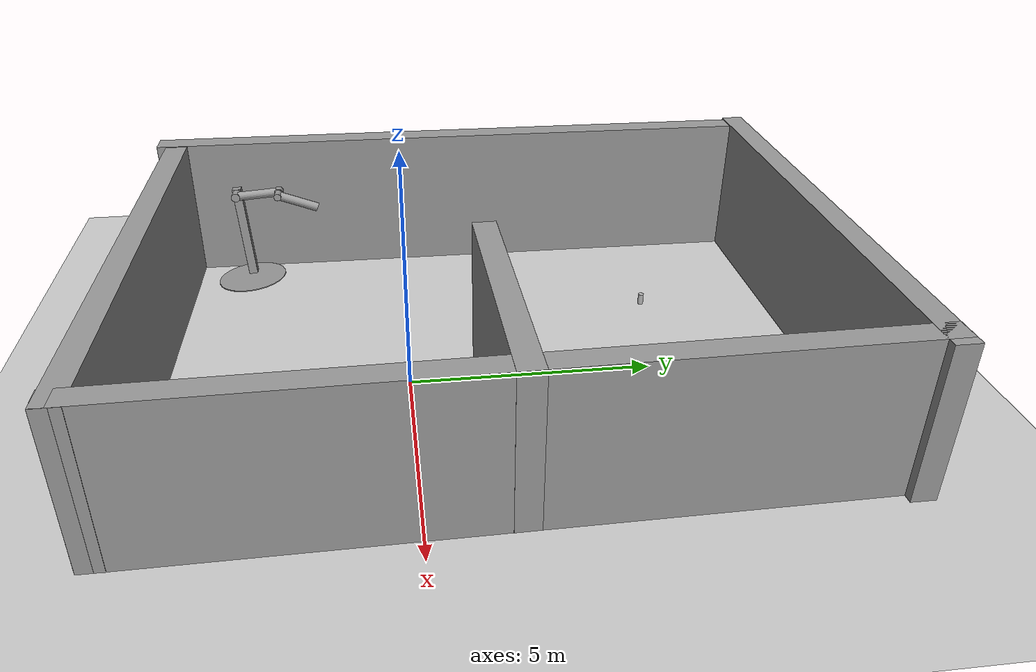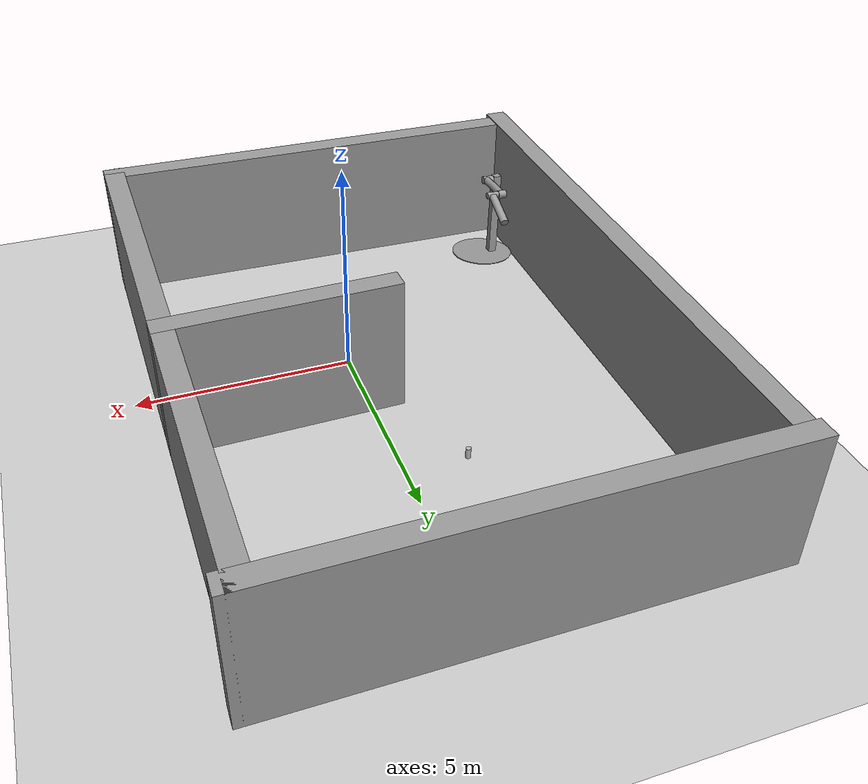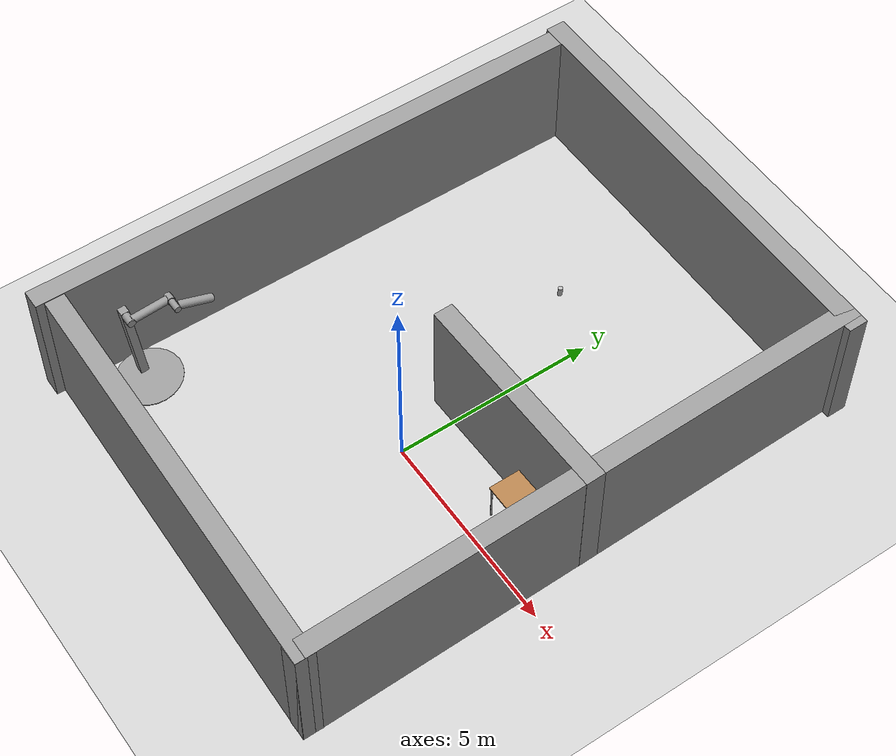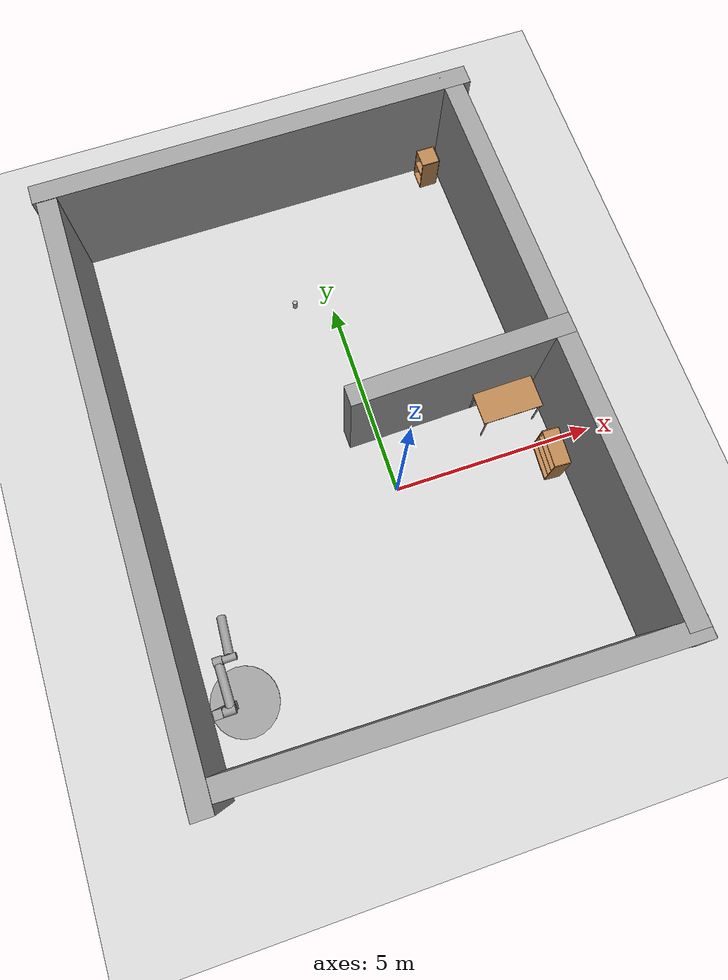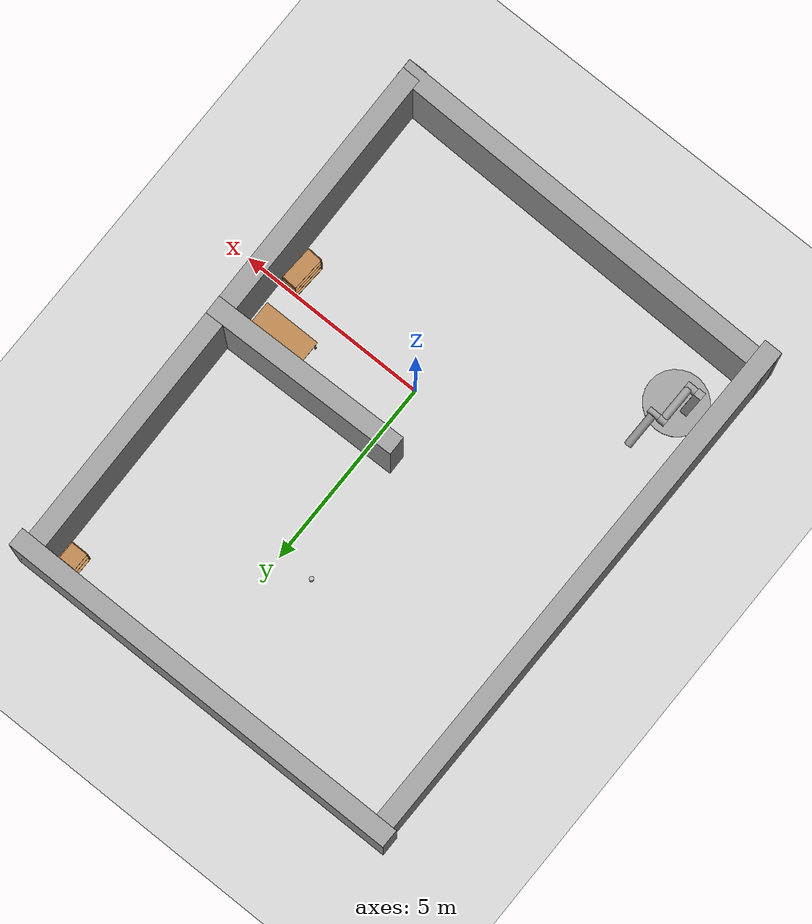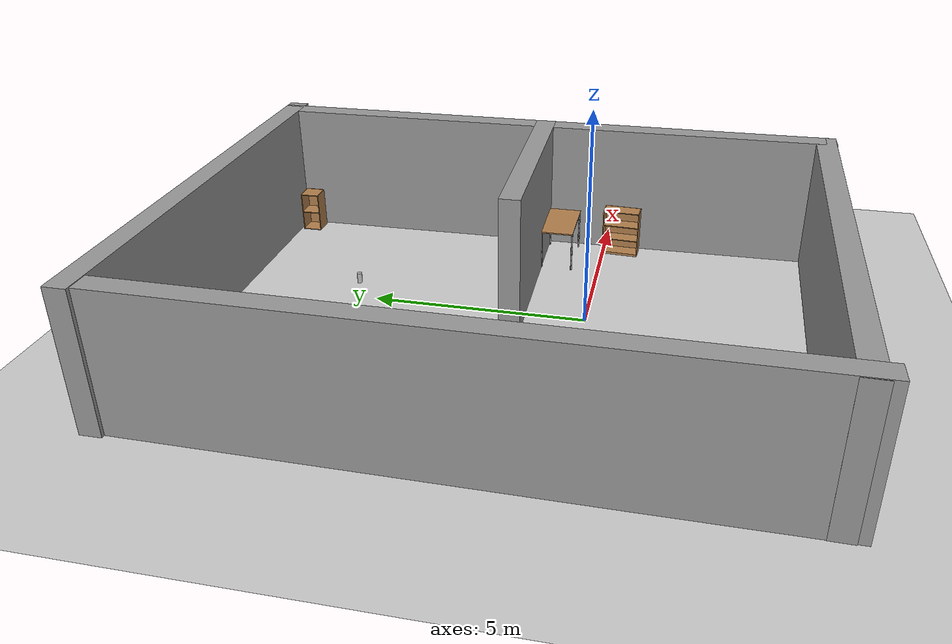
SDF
<sdf version="1.6">
 <world name="default">
  <model name="ground_plane">
   <static>1</static>
   <link name="link">
    <collision name="collision">
     <geometry><plane><normal>0 0 1</normal><size>100 100</size></plane></geometry>
     <surface>
      <contact><collide_bitmask>65535</collide_bitmask></contact>
      <friction><ode><mu>100</mu><mu2>50</mu2></ode></friction>
     </surface>
    </collision>
    <visual name="visual">
     <cast_shadows>0</cast_shadows>
     <geometry><plane><normal>0 0 1</normal><size>100 100</size></plane></geometry>
     <material>
      <script><uri>file://media/materials/scripts/gazebo.material</uri><name>Gazebo/Grey</name></script>
     </material>
    </visual>
   </link>
  </model>
  <model name="ROOM">
   <link name="link">
    <pose>0.44222 -0.722337 1.0886 0 -0 0</pose>
    <inertial>
     <mass>8.22128</mass>
     <inertia><ixx>7.21598</ixx><ixy>0</ixy><ixz>0</ixz><iyy>26.1423</iyy><iyz>0</iyz><izz>19.2492</izz></inertia>
    </inertial>
    <visual name="visual">
     <geometry><box><size>5.27835 0.485431 3.20889</size></box></geometry>
     <material>
      <script><name>Gazebo/Grey</name><uri>file://media/materials/scripts/gazebo.material</uri></script>
      <shader type="pixel"/>
      <ambient>0.3 0.3 0.3 1</ambient>
      <diffuse>0.7 0.7 0.7 1</diffuse>
      <specular>0.01 0.01 0.01 1</specular>
      <emissive>0 0 0 1</emissive>
     </material>
    </visual>
    <collision name="collision">
     <geometry><box><size>5.27835 0.485431 3.20889</size></box></geometry>
     <surface>
      <friction>
       <ode><mu>1</mu><mu2>1</mu2><fdir1>0 0 0</fdir1><slip1>0</slip1><slip2>0</slip2></ode>
       <torsional>
        <coefficient>1</coefficient>
        <patch_radius>0</patch_radius>
        <surface_radius>0</surface_radius>
        <use_patch_radius>1</use_patch_radius>
        <ode><slip>0</slip></ode>
       </torsional>
      </friction>
      <bounce><restitution_coefficient>0</restitution_coefficient><threshold>1e+06</threshold></bounce>
      <contact>
       <collide_without_contact>0</collide_without_contact>
       <collide_without_contact_bitmask>1</collide_without_contact_bitmask>
       <collide_bitmask>1</collide_bitmask>
       <ode>
        <soft_cfm>0</soft_cfm>
        <soft_erp>0.2</soft_erp>
        <kp>1e+13</kp>
        <kd>1</kd>
        <max_vel>0.01</max_vel>
        <min_depth>0</min_depth>
       </ode>
       <bullet>
        <split_impulse>1</split_impulse>
        <split_impulse_penetration_threshold>-0.01</split_impulse_penetration_threshold>
        <soft_cfm>0</soft_cfm>
        <soft_erp>0.2</soft_erp>
        <kp>1e+13</kp>
        <kd>1</kd>
       </bullet>
      </contact>
     </surface>
    </collision>
   </link>
   <link name="link_clone">
    <pose>2.83587 -0.76853 1.0879 3.1e-05 0.00238 1.56466</pose>
    <inertial>
     <mass>22.3167</mass>
     <inertia><ixx>19.5878</ixx><ixy>0</ixy><ixz>0</ixz><iyy>400.93</iyy><iyz>0</iyz><izz>382.218</izz></inertia>
    </inertial>
    <visual name="visual">
     <geometry><box><size>14.3279 0.485431 3.20889</size></box></geometry>
     <material>
      <script><name>Gazebo/Grey</name><uri>file://media/materials/scripts/gazebo.material</uri></script>
      <shader type="pixel"/>
      <ambient>0.3 0.3 0.3 1</ambient>
      <diffuse>0.7 0.7 0.7 1</diffuse>
      <specular>0.01 0.01 0.01 1</specular>
      <emissive>0 0 0 1</emissive>
     </material>
    </visual>
    <collision name="collision">
     <geometry><box><size>14.3279 0.485431 3.20889</size></box></geometry>
     <surface>
      <friction>
       <ode><mu>1</mu><mu2>1</mu2><fdir1>0 0 0</fdir1><slip1>0</slip1><slip2>0</slip2></ode>
       <torsional>
        <coefficient>1</coefficient>
        <patch_radius>0</patch_radius>
        <surface_radius>0</surface_radius>
        <use_patch_radius>1</use_patch_radius>
        <ode><slip>0</slip></ode>
       </torsional>
      </friction>
      <bounce><restitution_coefficient>0</restitution_coefficient><threshold>1e+06</threshold></bounce>
      <contact>
       <collide_without_contact>0</collide_without_contact>
       <collide_without_contact_bitmask>1</collide_without_contact_bitmask>
       <collide_bitmask>1</collide_bitmask>
       <ode>
        <soft_cfm>0</soft_cfm>
        <soft_erp>0.2</soft_erp>
        <kp>1e+13</kp>
        <kd>1</kd>
        <max_vel>0.01</max_vel>
        <min_depth>0</min_depth>
       </ode>
       <bullet>
        <split_impulse>1</split_impulse>
        <split_impulse_penetration_threshold>-0.01</split_impulse_penetration_threshold>
        <soft_cfm>0</soft_cfm>
        <soft_erp>0.2</soft_erp>
        <kp>1e+13</kp>
        <kd>1</kd>
       </bullet>
      </contact>
     </surface>
    </collision>
   </link>
   <link name="link_clone_0">
    <pose>-2.09509 6.25169 1.07142 -0.00238 -0 -0.019295</pose>
    <inertial>
     <mass>16.8291</mass>
     <inertia><ixx>14.7712</ixx><ixy>0</ixy><ixz>0</ixz><iyy>178.166</iyy><iyz>0</iyz><izz>164.056</izz></inertia>
    </inertial>
    <visual name="visual">
     <geometry><box><size>10.8049 0.485431 3.20889</size></box></geometry>
     <material>
      <script><name>Gazebo/Grey</name><uri>file://media/materials/scripts/gazebo.material</uri></script>
      <shader type="pixel"/>
      <ambient>0.3 0.3 0.3 1</ambient>
      <diffuse>0.7 0.7 0.7 1</diffuse>
      <specular>0.01 0.01 0.01 1</specular>
      <emissive>0 0 0 1</emissive>
     </material>
    </visual>
    <collision name="collision">
     <geometry><box><size>10.8049 0.485431 3.20889</size></box></geometry>
     <surface>
      <friction>
       <ode><mu>1</mu><mu2>1</mu2><fdir1>0 0 0</fdir1><slip1>0</slip1><slip2>0</slip2></ode>
       <torsional>
        <coefficient>1</coefficient>
        <patch_radius>0</patch_radius>
        <surface_radius>0</surface_radius>
        <use_patch_radius>1</use_patch_radius>
        <ode><slip>0</slip></ode>
       </torsional>
      </friction>
      <bounce><restitution_coefficient>0</restitution_coefficient><threshold>1e+06</threshold></bounce>
      <contact>
       <collide_without_contact>0</collide_without_contact>
       <collide_without_contact_bitmask>1</collide_without_contact_bitmask>
       <collide_bitmask>1</collide_bitmask>
       <ode>
        <soft_cfm>0</soft_cfm>
        <soft_erp>0.2</soft_erp>
        <kp>1e+13</kp>
        <kd>1</kd>
        <max_vel>0.01</max_vel>
        <min_depth>0</min_depth>
       </ode>
       <bullet>
        <split_impulse>1</split_impulse>
        <split_impulse_penetration_threshold>-0.01</split_impulse_penetration_threshold>
        <soft_cfm>0</soft_cfm>
        <soft_erp>0.2</soft_erp>
        <kp>1e+13</kp>
        <kd>1</kd>
       </bullet>
      </contact>
     </surface>
    </collision>
   </link>
   <link name="link_clone_0_clone">
    <pose>-2.36394 -7.48523 1.10412 -0.00476 -4.6e-05 -0.03859</pose>
    <inertial>
     <mass>16.8291</mass>
     <inertia><ixx>14.7712</ixx><ixy>0</ixy><ixz>0</ixz><iyy>178.166</iyy><iyz>0</iyz><izz>164.056</izz></inertia>
    </inertial>
    <visual name="visual">
     <geometry><box><size>10.8049 0.485431 3.20889</size></box></geometry>
     <material>
      <script><name>Gazebo/Grey</name><uri>file://media/materials/scripts/gazebo.material</uri></script>
      <shader type="pixel"/>
      <ambient>0.3 0.3 0.3 1</ambient>
      <diffuse>0.7 0.7 0.7 1</diffuse>
      <specular>0.01 0.01 0.01 1</specular>
      <emissive>0 0 0 1</emissive>
     </material>
    </visual>
    <collision name="collision">
     <geometry><box><size>10.8049 0.485431 3.20889</size></box></geometry>
     <surface>
      <friction>
       <ode><mu>1</mu><mu2>1</mu2><fdir1>0 0 0</fdir1><slip1>0</slip1><slip2>0</slip2></ode>
       <torsional>
        <coefficient>1</coefficient>
        <patch_radius>0</patch_radius>
        <surface_radius>0</surface_radius>
        <use_patch_radius>1</use_patch_radius>
        <ode><slip>0</slip></ode>
       </torsional>
      </friction>
      <bounce><restitution_coefficient>0</restitution_coefficient><threshold>1e+06</threshold></bounce>
      <contact>
       <collide_without_contact>0</collide_without_contact>
       <collide_without_contact_bitmask>1</collide_without_contact_bitmask>
       <collide_bitmask>1</collide_bitmask>
       <ode>
        <soft_cfm>0</soft_cfm>
        <soft_erp>0.2</soft_erp>
        <kp>1e+13</kp>
        <kd>1</kd>
        <max_vel>0.01</max_vel>
        <min_depth>0</min_depth>
       </ode>
       <bullet>
        <split_impulse>1</split_impulse>
        <split_impulse_penetration_threshold>-0.01</split_impulse_penetration_threshold>
        <soft_cfm>0</soft_cfm>
        <soft_erp>0.2</soft_erp>
        <kp>1e+13</kp>
        <kd>1</kd>
       </bullet>
      </contact>
     </surface>
    </collision>
   </link>
   <link name="link_clone_clone">
    <pose>-7.34346 -0.57469 1.08791 1.6e-05 0.00476 1.54537</pose>
    <inertial>
     <mass>22.3167</mass>
     <inertia><ixx>19.5878</ixx><ixy>0</ixy><ixz>0</ixz><iyy>400.93</iyy><iyz>0</iyz><izz>382.218</izz></inertia>
    </inertial>
    <visual name="visual">
     <geometry><box><size>14.3279 0.485431 3.20889</size></box></geometry>
     <material>
      <script><name>Gazebo/Grey</name><uri>file://media/materials/scripts/gazebo.material</uri></script>
      <shader type="pixel"/>
      <ambient>0.3 0.3 0.3 1</ambient>
      <diffuse>0.7 0.7 0.7 1</diffuse>
      <specular>0.01 0.01 0.01 1</specular>
      <emissive>0 0 0 1</emissive>
     </material>
    </visual>
    <collision name="collision">
     <geometry><box><size>14.3279 0.485431 3.20889</size></box></geometry>
     <surface>
      <friction>
       <ode><mu>1</mu><mu2>1</mu2><fdir1>0 0 0</fdir1><slip1>0</slip1><slip2>0</slip2></ode>
       <torsional>
        <coefficient>1</coefficient>
        <patch_radius>0</patch_radius>
        <surface_radius>0</surface_radius>
        <use_patch_radius>1</use_patch_radius>
        <ode><slip>0</slip></ode>
       </torsional>
      </friction>
      <bounce><restitution_coefficient>0</restitution_coefficient><threshold>1e+06</threshold></bounce>
      <contact>
       <collide_without_contact>0</collide_without_contact>
       <collide_without_contact_bitmask>1</collide_without_contact_bitmask>
       <collide_bitmask>1</collide_bitmask>
       <ode>
        <soft_cfm>0</soft_cfm>
        <soft_erp>0.2</soft_erp>
        <kp>1e+13</kp>
        <kd>1</kd>
        <max_vel>0.01</max_vel>
        <min_depth>0</min_depth>
       </ode>
       <bullet>
        <split_impulse>1</split_impulse>
        <split_impulse_penetration_threshold>-0.01</split_impulse_penetration_threshold>
        <soft_cfm>0</soft_cfm>
        <soft_erp>0.2</soft_erp>
        <kp>1e+13</kp>
        <kd>1</kd>
       </bullet>
      </contact>
     </surface>
    </collision>
   </link>
   <joint name="link_clone_JOINT_1" type="fixed">
    <parent>link_clone</parent>
    <child>link</child>
    <physics>
     <ode><limit><cfm>0</cfm><erp>0.2</erp></limit><suspension><cfm>0</cfm><erp>0.2</erp></suspension></ode>
    </physics>
   </joint>
   <joint name="link_clone_JOINT_2" type="fixed">
    <parent>link_clone</parent>
    <child>link_clone_0</child>
    <physics>
     <ode><limit><cfm>0</cfm><erp>0.2</erp></limit><suspension><cfm>0</cfm><erp>0.2</erp></suspension></ode>
    </physics>
   </joint>
   <joint name="link_clone_clone_JOINT_3" type="fixed">
    <parent>link_clone_clone</parent>
    <child>link_clone_0</child>
    <physics>
     <ode><limit><cfm>0</cfm><erp>0.2</erp></limit><suspension><cfm>0</cfm><erp>0.2</erp></suspension></ode>
    </physics>
   </joint>
   <joint name="link_clone_clone_JOINT_4" type="fixed">
    <parent>link_clone_clone</parent>
    <child>link_clone_0_clone</child>
    <physics>
     <ode><limit><cfm>0</cfm><erp>0.2</erp></limit><suspension><cfm>0</cfm><erp>0.2</erp></suspension></ode>
    </physics>
   </joint>
   <static>1</static>
   <pose>1.42927 2.38438 0.492002 0.00238 -4.6e-05 0.019295</pose>
  </model>
  <model name="table">
   <static>1</static>
   <link name="link">
    <collision name="surface">
     <pose>0 0 1 0 -0 0</pose>
     <geometry><box><size>1.5 0.8 0.03</size></box></geometry>
     <surface><friction><ode><mu>0.6</mu><mu2>0.6</mu2></ode></friction></surface>
    </collision>
    <visual name="visual1">
     <pose>0 0 1 0 -0 0</pose>
     <geometry><box><size>1.5 0.8 0.03</size></box></geometry>
     <material>
      <script><uri>file://media/materials/scripts/gazebo.material</uri><name>Gazebo/Wood</name></script>
     </material>
    </visual>
    <collision name="front_left_leg">
     <pose>0.68 0.38 0.5 0 -0 0</pose>
     <geometry><cylinder><radius>0.02</radius><length>1</length></cylinder></geometry>
    </collision>
    <visual name="front_left_leg">
     <pose>0.68 0.38 0.5 0 -0 0</pose>
     <geometry><cylinder><radius>0.02</radius><length>1</length></cylinder></geometry>
     <material>
      <script><uri>file://media/materials/scripts/gazebo.material</uri><name>Gazebo/Grey</name></script>
     </material>
    </visual>
    <collision name="front_right_leg">
     <pose>0.68 -0.38 0.5 0 -0 0</pose>
     <geometry><cylinder><radius>0.02</radius><length>1</length></cylinder></geometry>
    </collision>
    <visual name="front_right_leg">
     <pose>0.68 -0.38 0.5 0 -0 0</pose>
     <geometry><cylinder><radius>0.02</radius><length>1</length></cylinder></geometry>
     <material>
      <script><uri>file://media/materials/scripts/gazebo.material</uri><name>Gazebo/Grey</name></script>
     </material>
    </visual>
    <collision name="back_right_leg">
     <pose>-0.68 -0.38 0.5 0 -0 0</pose>
     <geometry><cylinder><radius>0.02</radius><length>1</length></cylinder></geometry>
    </collision>
    <visual name="back_right_leg">
     <pose>-0.68 -0.38 0.5 0 -0 0</pose>
     <geometry><cylinder><radius>0.02</radius><length>1</length></cylinder></geometry>
     <material>
      <script><uri>file://media/materials/scripts/gazebo.material</uri><name>Gazebo/Grey</name></script>
     </material>
    </visual>
    <collision name="back_left_leg">
     <pose>-0.68 0.38 0.5 0 -0 0</pose>
     <geometry><cylinder><radius>0.02</radius><length>1</length></cylinder></geometry>
    </collision>
    <visual name="back_left_leg">
     <pose>-0.68 0.38 0.5 0 -0 0</pose>
     <geometry><cylinder><radius>0.02</radius><length>1</length></cylinder></geometry>
     <material>
      <script><uri>file://media/materials/scripts/gazebo.material</uri><name>Gazebo/Grey</name></script>
     </material>
    </visual>
   </link>
   <pose>3.11613 1.05592 0 0 -0 0</pose>
  </model>
  <model name="beer">
   <link name="link">
    <pose>0 0 0.115 0 -0 0</pose>
    <inertial>
     <mass>0.39</mass>
     <inertia><ixx>0.00058</ixx><ixy>0</ixy><ixz>0</ixz><iyy>0.00058</iyy><iyz>0</iyz><izz>0.00019</izz></inertia>
    </inertial>
    <collision name="collision">
     <geometry><cylinder><radius>0.055</radius><length>0.23</length></cylinder></geometry>
    </collision>
    <visual name="visual">
     <geometry><cylinder><radius>0.055</radius><length>0.23</length></cylinder></geometry>
     <material>
      <script>
       <uri>model://beer/materials/scripts</uri>
       <uri>model://beer/materials/textures</uri>
       <name>Beer/Diffuse</name>
      </script>
     </material>
    </visual>
   </link>
   <pose>-0.985351 5.00501 0.964763 2.6e-05 6e-06 -0.002975</pose>
  </model>
  <model name="bookshelf">
   <static>1</static>
   <link name="link">
    <inertial><mass>1</mass></inertial>
    <collision name="back">
     <pose>0 0.005 0.6 0 -0 0</pose>
     <geometry><box><size>0.9 0.01 1.2</size></box></geometry>
    </collision>
    <visual name="visual1">
     <pose>0 0.005 0.6 0 -0 0</pose>
     <geometry><box><size>0.9 0.01 1.2</size></box></geometry>
     <material>
      <script><uri>file://media/materials/scripts/gazebo.material</uri><name>Gazebo/Wood</name></script>
     </material>
    </visual>
    <collision name="left_side">
     <pose>0.45 -0.195 0.6 0 -0 0</pose>
     <geometry><box><size>0.02 0.4 1.2</size></box></geometry>
    </collision>
    <visual name="visual2">
     <pose>0.45 -0.195 0.6 0 -0 0</pose>
     <geometry><box><size>0.02 0.4 1.2</size></box></geometry>
     <material>
      <script><uri>file://media/materials/scripts/gazebo.material</uri><name>Gazebo/Wood</name></script>
     </material>
    </visual>
    <collision name="right_side">
     <pose>-0.45 -0.195 0.6 0 -0 0</pose>
     <geometry><box><size>0.02 0.4 1.2</size></box></geometry>
    </collision>
    <visual name="visual3">
     <pose>-0.45 -0.195 0.6 0 -0 0</pose>
     <geometry><box><size>0.02 0.4 1.2</size></box></geometry>
     <material>
      <script><uri>file://media/materials/scripts/gazebo.material</uri><name>Gazebo/Wood</name></script>
     </material>
    </visual>
    <collision name="bottom">
     <pose>0 -0.195 0.03 0 -0 0</pose>
     <geometry><box><size>0.88 0.4 0.06</size></box></geometry>
    </collision>
    <visual name="visual4">
     <pose>0 -0.195 0.03 0 -0 0</pose>
     <geometry><box><size>0.88 0.4 0.06</size></box></geometry>
     <material>
      <script><uri>file://media/materials/scripts/gazebo.material</uri><name>Gazebo/Wood</name></script>
     </material>
    </visual>
    <collision name="top">
     <pose>0 -0.195 1.19 0 -0 0</pose>
     <geometry><box><size>0.88 0.4 0.02</size></box></geometry>
    </collision>
    <visual name="visual5">
     <pose>0 -0.195 1.19 0 -0 0</pose>
     <geometry><box><size>0.88 0.4 0.02</size></box></geometry>
     <material>
      <script><uri>file://media/materials/scripts/gazebo.material</uri><name>Gazebo/Wood</name></script>
     </material>
    </visual>
    <collision name="low_shelf">
     <pose>0 -0.195 0.43 0 -0 0</pose>
     <geometry><box><size>0.88 0.4 0.02</size></box></geometry>
    </collision>
    <visual name="visual6">
     <pose>0 -0.195 0.43 0 -0 0</pose>
     <geometry><box><size>0.88 0.4 0.02</size></box></geometry>
     <material>
      <script><uri>file://media/materials/scripts/gazebo.material</uri><name>Gazebo/Wood</name></script>
     </material>
    </visual>
    <collision name="high_shelf">
     <pose>0 -0.195 0.8 0 -0 0</pose>
     <geometry><box><size>0.88 0.4 0.02</size></box></geometry>
    </collision>
    <visual name="visual7">
     <pose>0 -0.195 0.8 0 -0 0</pose>
     <geometry><box><size>0.88 0.4 0.02</size></box></geometry>
     <material>
      <script><uri>file://media/materials/scripts/gazebo.material</uri><name>Gazebo/Wood</name></script>
     </material>
    </visual>
   </link>
   <pose>3.91479 -0.452573 0 0 0 -1.6275</pose>
  </model>
  <model name="cabinet">
   <static>1</static>
   <link name="cabinet_bottom_plate">
    <inertial>
     <pose>0 0 -1 0 -0 0</pose>
     <inertia><ixx>2.05</ixx><ixy>0</ixy><ixz>0</ixz><iyy>2.05</iyy><iyz>0</iyz><izz>2.05</izz></inertia>
     <mass>25</mass>
    </inertial>
    <collision name="cabinet_bottom_plate_geom">
     <pose>0 0 0.01 0 -0 0</pose>
     <geometry><box><size>0.45 0.45 0.02</size></box></geometry>
    </collision>
    <visual name="cabinet_bottom_plate_geom_visual">
     <pose>0 0 0.01 0 -0 0</pose>
     <geometry><box><size>0.45 0.45 0.02</size></box></geometry>
     <material>
      <script><uri>file://media/materials/scripts/gazebo.material</uri><name>Gazebo/Wood</name></script>
     </material>
    </visual>
    <collision name="cabinet_bottom_plate_geom_cabinet_back_plate">
     <pose>0.235 0 0.51 0 -0 0</pose>
     <geometry><box><size>0.02 0.45 1.02</size></box></geometry>
    </collision>
    <visual name="cabinet_bottom_plate_geom_cabinet_back_plate_visual">
     <pose>0.235 0 0.51 0 -0 0</pose>
     <geometry><box><size>0.02 0.45 1.02</size></box></geometry>
     <material>
      <script><uri>file://media/materials/scripts/gazebo.material</uri><name>Gazebo/Wood</name></script>
     </material>
    </visual>
    <collision name="cabinet_bottom_plate_geom_cabinet_left_plate">
     <pose>0 0.235 0.51 0 -0 0</pose>
     <geometry><box><size>0.45 0.02 1.02</size></box></geometry>
    </collision>
    <visual name="cabinet_bottom_plate_geom_cabinet_left_plate_visual">
     <pose>0 0.235 0.51 0 -0 0</pose>
     <geometry><box><size>0.45 0.02 1.02</size></box></geometry>
     <material>
      <script><uri>file://media/materials/scripts/gazebo.material</uri><name>Gazebo/Wood</name></script>
     </material>
    </visual>
    <collision name="cabinet_bottom_plate_geom_cabinet_middle_plate">
     <pose>0 0 0.51 0 -0 0</pose>
     <geometry><box><size>0.45 0.45 0.02</size></box></geometry>
    </collision>
    <visual name="cabinet_bottom_plate_geom_cabinet_middle_plate_visual">
     <pose>0 0 0.51 0 -0 0</pose>
     <geometry><box><size>0.45 0.45 0.02</size></box></geometry>
     <material>
      <script><uri>file://media/materials/scripts/gazebo.material</uri><name>Gazebo/Wood</name></script>
     </material>
    </visual>
    <collision name="cabinet_bottom_plate_geom_cabinet_right_plate">
     <pose>0 -0.235 0.51 0 -0 0</pose>
     <geometry><box><size>0.45 0.02 1.02</size></box></geometry>
    </collision>
    <visual name="cabinet_bottom_plate_geom_cabinet_right_plate_visual">
     <pose>0 -0.235 0.51 0 -0 0</pose>
     <geometry><box><size>0.45 0.02 1.02</size></box></geometry>
     <material>
      <script><uri>file://media/materials/scripts/gazebo.material</uri><name>Gazebo/Wood</name></script>
     </material>
    </visual>
    <collision name="cabinet_bottom_plate_geom_cabinet_top_plate">
     <pose>0 0 1.01 0 -0 0</pose>
     <geometry><box><size>0.45 0.45 0.02</size></box></geometry>
    </collision>
    <visual name="cabinet_bottom_plate_geom_cabinet_top_plate_visual">
     <pose>0 0 1.01 0 -0 0</pose>
     <geometry><box><size>0.45 0.45 0.02</size></box></geometry>
     <material>
      <script><uri>file://media/materials/scripts/gazebo.material</uri><name>Gazebo/Wood</name></script>
     </material>
    </visual>
   </link>
   <pose>3.59466 8.0196 0 0 -0 0</pose>
  </model>
  <model name="double_pendulum_with_base">
   <link name="base">
    <inertial>
     <mass>100</mass>
     <inertia><ixx>1</ixx><ixy>0</ixy><ixz>0</ixz><iyy>1</iyy><iyz>0</iyz><izz>1</izz></inertia>
    </inertial>
    <visual name="vis_plate_on_ground">
     <pose>0 0 0.01 0 -0 0</pose>
     <geometry><cylinder><radius>0.8</radius><length>0.02</length></cylinder></geometry>
     <material>
      <script><uri>file://media/materials/scripts/gazebo.material</uri><name>Gazebo/Grey</name></script>
     </material>
    </visual>
    <visual name="vis_pole">
     <pose>-0.275 0 1.1 0 -0 0</pose>
     <geometry><box><size>0.2 0.2 2.2</size></box></geometry>
     <material>
      <script><uri>file://media/materials/scripts/gazebo.material</uri><name>Gazebo/Grey</name></script>
     </material>
    </visual>
    <collision name="col_plate_on_ground">
     <pose>0 0 0.01 0 -0 0</pose>
     <geometry><cylinder><radius>0.8</radius><length>0.02</length></cylinder></geometry>
    </collision>
    <collision name="col_pole">
     <pose>-0.275 0 1.1 0 -0 0</pose>
     <geometry><box><size>0.2 0.2 2.2</size></box></geometry>
    </collision>
   </link>
   <link name="upper_link">
    <pose>0 0 2.1 -1.5708 0 0</pose>
    <inertial>
     <pose>0 0 0.5 0 -0 0</pose>
     <inertia><ixx>1</ixx><ixy>0</ixy><ixz>0</ixz><iyy>1</iyy><iyz>0</iyz><izz>1</izz></inertia>
     <mass>1</mass>
    </inertial>
    <visual name="vis_upper_joint">
     <pose>-0.05 0 0 3.14159 1.57079 3.14159</pose>
     <geometry><cylinder><radius>0.1</radius><length>0.3</length></cylinder></geometry>
     <material>
      <script><uri>file://media/materials/scripts/gazebo.material</uri><name>Gazebo/Grey</name></script>
     </material>
    </visual>
    <visual name="vis_lower_joint">
     <pose>0 0 1 3.14159 1.57079 3.14159</pose>
     <geometry><cylinder><radius>0.1</radius><length>0.2</length></cylinder></geometry>
     <material>
      <script><uri>file://media/materials/scripts/gazebo.material</uri><name>Gazebo/Grey</name></script>
     </material>
    </visual>
    <visual name="vis_cylinder">
     <pose>0 0 0.5 0 -0 0</pose>
     <geometry><cylinder><radius>0.1</radius><length>0.9</length></cylinder></geometry>
     <material>
      <script><uri>file://media/materials/scripts/gazebo.material</uri><name>Gazebo/Grey</name></script>
     </material>
    </visual>
    <collision name="col_upper_joint">
     <pose>-0.05 0 0 3.14159 1.57079 3.14159</pose>
     <geometry><cylinder><radius>0.1</radius><length>0.3</length></cylinder></geometry>
    </collision>
    <collision name="col_lower_joint">
     <pose>0 0 1 3.14159 1.57079 3.14159</pose>
     <geometry><cylinder><radius>0.1</radius><length>0.2</length></cylinder></geometry>
    </collision>
    <collision name="col_cylinder">
     <pose>0 0 0.5 0 -0 0</pose>
     <geometry><cylinder><radius>0.1</radius><length>0.9</length></cylinder></geometry>
    </collision>
   </link>
   <link name="lower_link">
    <pose>0.25 1 2.1 -2 0 0</pose>
    <inertial>
     <pose>0 0 0.5 0 -0 0</pose>
     <inertia><ixx>1</ixx><ixy>0</ixy><ixz>0</ixz><iyy>1</iyy><iyz>0</iyz><izz>1</izz></inertia>
     <mass>1</mass>
    </inertial>
    <visual name="vis_lower_joint">
     <pose>0 0 0 3.14159 1.57079 3.14159</pose>
     <geometry><cylinder><radius>0.08</radius><length>0.3</length></cylinder></geometry>
     <material>
      <script><uri>file://media/materials/scripts/gazebo.material</uri><name>Gazebo/Grey</name></script>
     </material>
    </visual>
    <visual name="vis_cylinder">
     <pose>0 0 0.5 0 -0 0</pose>
     <geometry><cylinder><radius>0.1</radius><length>0.9</length></cylinder></geometry>
     <material>
      <script><uri>file://media/materials/scripts/gazebo.material</uri><name>Gazebo/Grey</name></script>
     </material>
    </visual>
    <collision name="col_lower_joint">
     <pose>0 0 0 3.14159 1.57079 3.14159</pose>
     <geometry><cylinder><radius>0.08</radius><length>0.3</length></cylinder></geometry>
    </collision>
    <collision name="col_cylinder">
     <pose>0 0 0.5 0 -0 0</pose>
     <geometry><cylinder><radius>0.1</radius><length>0.9</length></cylinder></geometry>
    </collision>
   </link>
   <joint name="upper_joint" type="revolute">
    <parent>base</parent>
    <child>upper_link</child>
    <axis>
     <xyz>1 0 0</xyz>
     <use_parent_model_frame>0</use_parent_model_frame>
     <limit><lower>-1e+16</lower><upper>1e+16</upper></limit>
     <dynamics><spring_reference>0</spring_reference><spring_stiffness>0</spring_stiffness></dynamics>
    </axis>
   </joint>
   <joint name="lower_joint" type="revolute">
    <parent>upper_link</parent>
    <child>lower_link</child>
    <axis>
     <xyz>1 0 0</xyz>
     <use_parent_model_frame>0</use_parent_model_frame>
     <limit><lower>-1e+16</lower><upper>1e+16</upper></limit>
     <dynamics><spring_reference>0</spring_reference><spring_stiffness>0</spring_stiffness></dynamics>
    </axis>
   </joint>
   <pose>-4.89131 -3.58243 0.072973 0.074703 -0.052642 -0.010211</pose>
  </model>
 </world>
</sdf>
